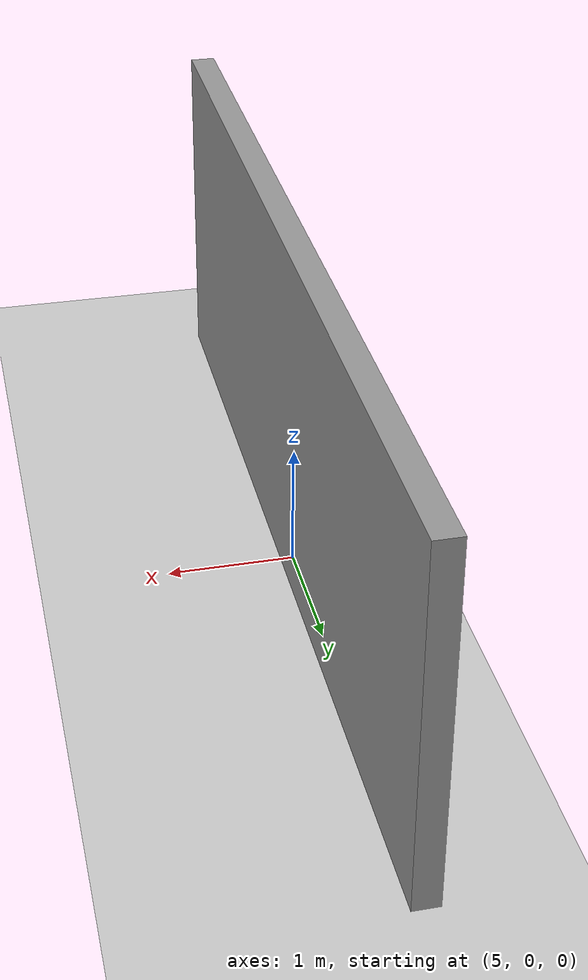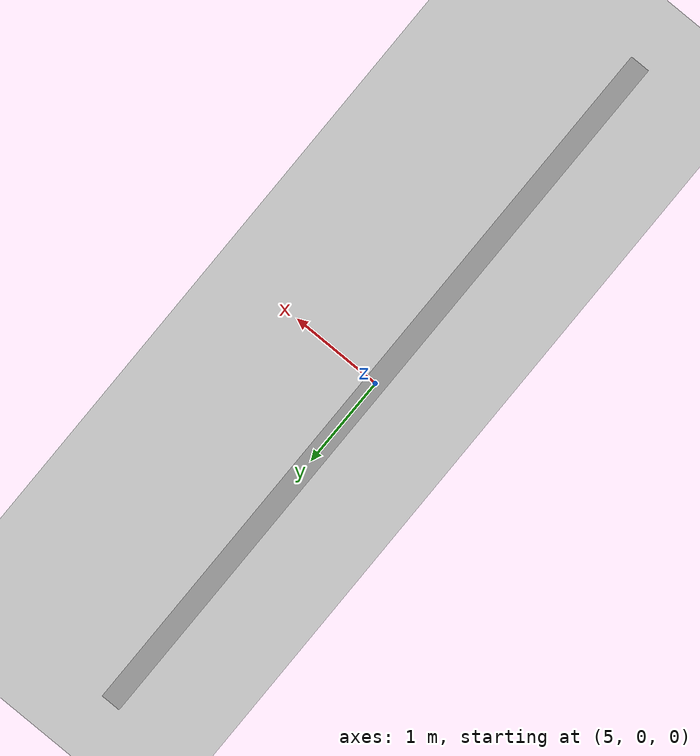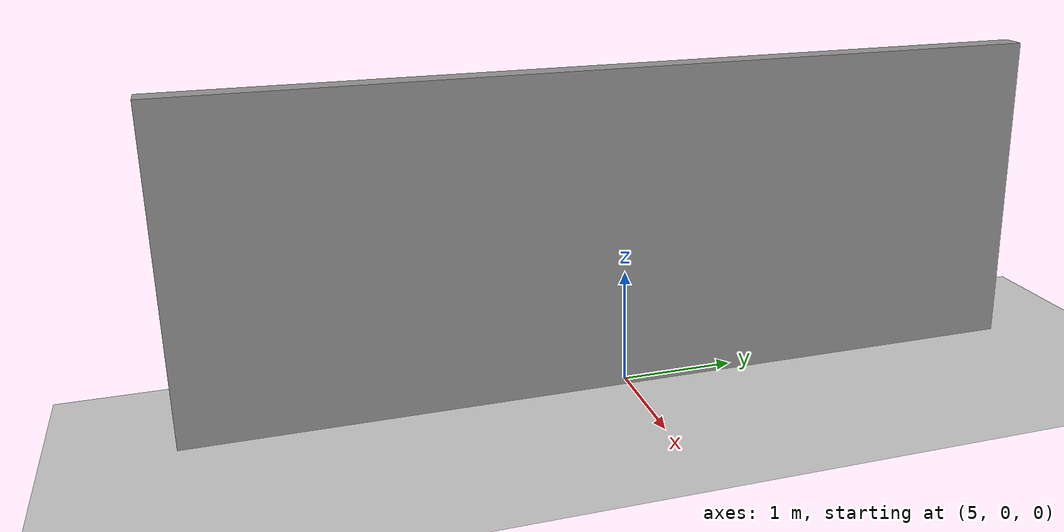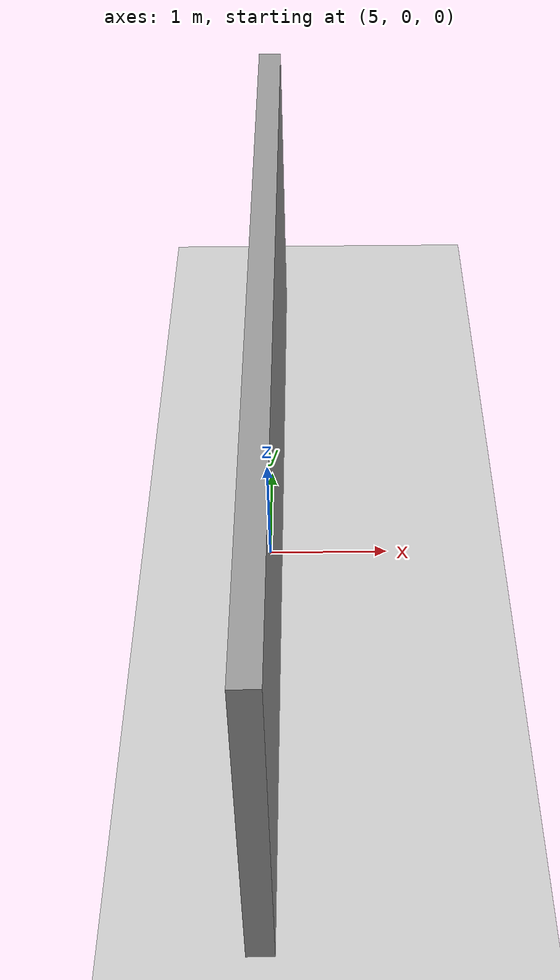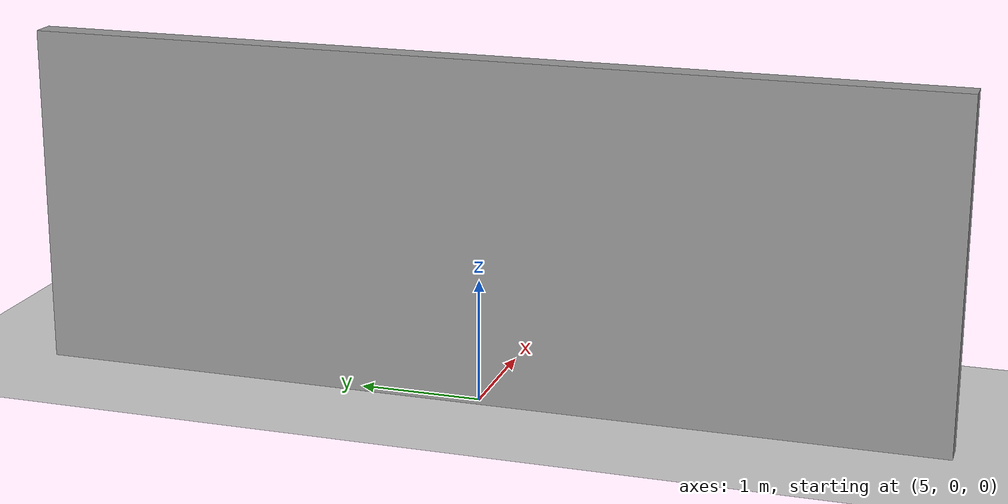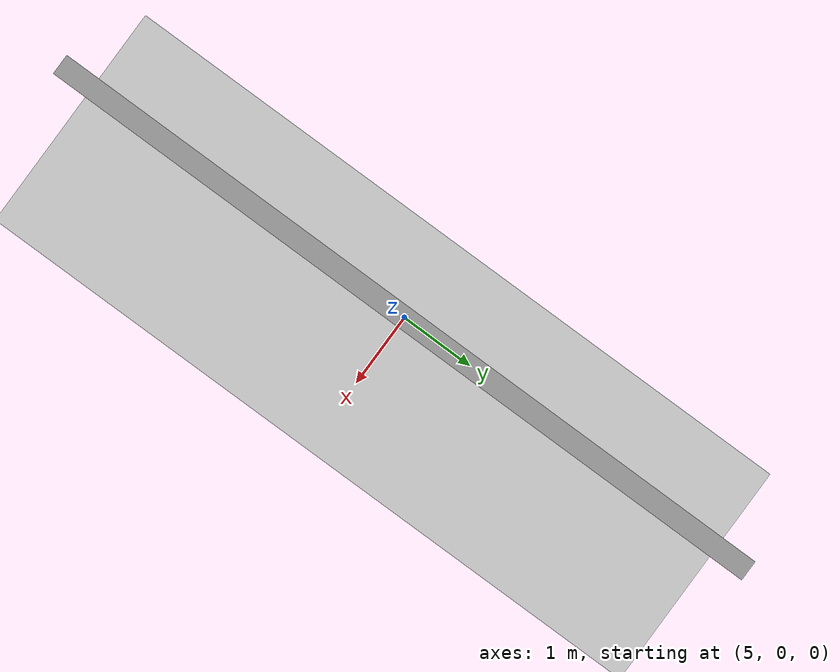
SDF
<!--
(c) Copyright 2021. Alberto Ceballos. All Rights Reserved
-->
<?xml version="1.0" ?>

<sdf version="1.6">

   <world name="depth_world">

      <!-- Ground base -->

      <include>
         <uri>model://ground_plane</uri>
	 <name>ground_plane</name>
	 <pose>9 0 0 0 0 0</pose>
      </include>

      <!-- Ground base -->

      <include>
         <uri>model://grey_wall</uri>
	 <name>near_wall</name>
	 <pose>5 0 0 0 0 1.57</pose>
      </include>

      <!-- Ilumination -->

      <light type="directional" name="sun">
    	<cast_shadows>false</cast_shadows>
    	<pose>0 0 10 0 0 0</pose>
    	<diffuse>0.8 0.8 0.8 1</diffuse>
    	<specular>0.2 0.2 0.2 1</specular>
    	<attenuation>
      		<range>1000</range>
      		<constant>0.9</constant>
      		<linear>0.01</linear>
      		<quadratic>0.001</quadratic>
    	</attenuation>
    	<direction>-0.5 0.1 -0.9</direction>
      </light>

      <!-- Ilumination -->

   </world>

</sdf>

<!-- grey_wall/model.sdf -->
<sdf version="1.5">
  <model name="grey_wall">
    <static>true</static>
    <link name="link">
      <pose>0 0 1.4 0 0 0</pose>
      <collision name="collision">
        <geometry>
          <box>
            <size>7.5 0.2 2.8</size>
          </box>
        </geometry>
      </collision>
      <visual name="visual">
        <cast_shadows>false</cast_shadows>
        <geometry>
          <box>
            <size>7.5 0.2 2.8</size>
          </box>
        </geometry>
        <material>
          <script>
            <uri>model://../model_source/models/grey_wall/materials/scripts</uri>
            <uri>model://../model_source/models/grey_wall/materials/textures</uri>
            <name>vrc/grey_wall</name>
          </script>
        </material>
      </visual>
    </link>
  </model>
</sdf>
